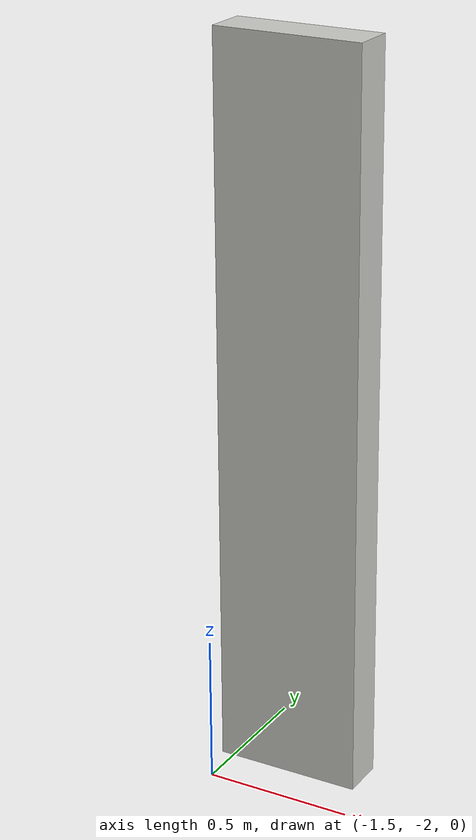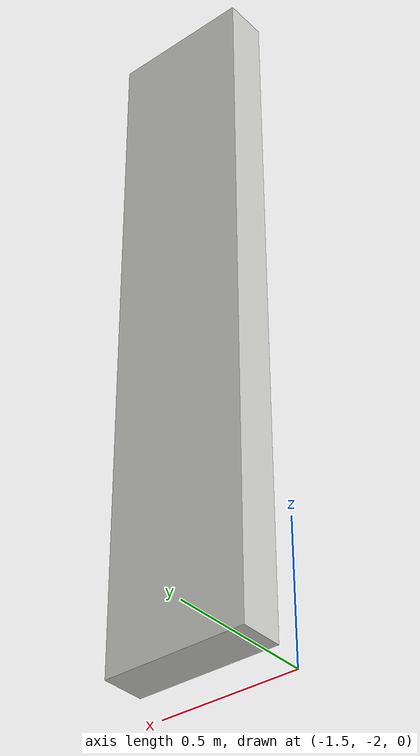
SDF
<?xml version='1.0'?>
<sdf version='1.7'>
  <model name='wall'>
    <pose>-0.7725 -0.9275 0 0 -0 0</pose>
    <link name='Wall_0'>
      <collision name='Wall_0_Collision'>
        <geometry>
          <box>
            <size>0.5 0.15 2.5</size>
          </box>
        </geometry>
        <pose>0 0 1.25 0 -0 0</pose>
      </collision>
      <visual name='Wall_0_Visual'>
        <pose>0 0 1.25 0 -0 0</pose>
        <geometry>
          <box>
            <size>0.5 0.15 2.5</size>
          </box>
        </geometry>
        <material>
          <script>
            <uri>file://media/materials/scripts/gazebo.material</uri>
            <name>Gazebo/CeilingTiled</name>
          </script>
          <ambient>1 1 1 1</ambient>
        </material>
        <meta>
          <layer>0</layer>
        </meta>
      </visual>
      <pose>-0.5225 -0.8525 0 0 -0 0</pose>
    </link>
    <static>1</static>
  </model>
</sdf>
